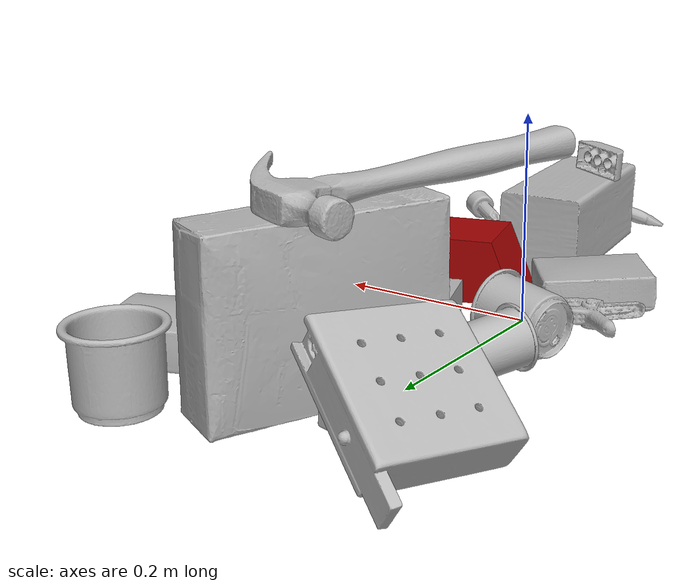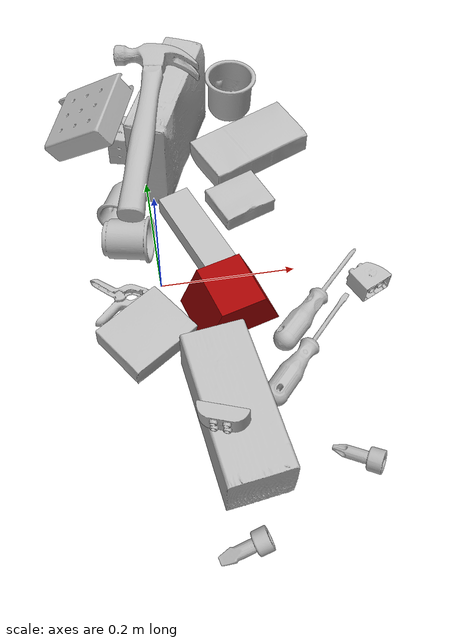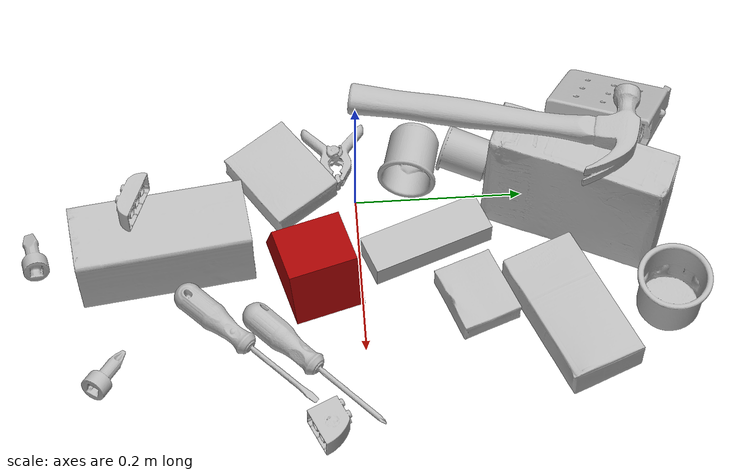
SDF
<sdf version="1.4">
  <world name="default">
    <light name="light1" type="point">
      <pose>0 0 1 0 0 0</pose>
      <diffuse>3 3 3 1</diffuse>
      <specular>3 3 3 1</specular>
    </light>
    <light name="light2" type="point">
      <pose>0 0.5 2 0 0 0</pose>
      <diffuse>1 1 1 1</diffuse>
      <specular>1 1 1 1</specular>
    </light>
    <light name="light3" type="point">
      <pose>0 0.5 2 0 0 0</pose>
      <diffuse>3 3 3 1</diffuse>
      <specular>3 3 3 1</specular>
    </light>
    <scene>
      <ambient>0.7 0.7 0.7</ambient>
    </scene>
    <model name="box21">
      <link name="link_box21">
        <collision name="default">
          <geometry>
            <mesh>
              <uri>model://cracker_box/collision_meshes/collision.obj</uri>
              <scale>1.0 1.0 1.0</scale>
            </mesh>
          </geometry>
          <surface>
            <friction>
              <ode>
                <mu>0.5</mu>
                <mu2>0.5</mu2>
              </ode>
            </friction>
          <contact>
        <ode>
            <max_vel>0</max_vel>
            <min_depth>0.0001</min_depth>
            <kp>1e8</kp>
        </ode>
    </contact></surface>
        </collision>
        <visual name="default">
          <geometry>
            <mesh>
              <uri>model://cracker_box/visual_meshes/visual.dae</uri>
              <scale>1.0 1.0 1.0</scale>
            </mesh>
          </geometry>
        </visual>
        <inertial>
          <mass>1.1849639415740967</mass>
          <pose>0.0009464144241064787 0.0002543424488976598 -0.0017029534792527556 -0.0003162077682631379 -0.011106487737543453 0.002546794536785776</pose>
          <inertia>
            <ixx>0.0030140192</ixx>
            <iyy>0.004976738</iyy>
            <izz>0.007102261</izz>
            <ixy>0</ixy>
            <ixz>0</ixz>
            <iyz>0</iyz>
          </inertia>
        </inertial>
      </link>
      <pose>0.04731908068060875 0.2557030916213989 0.08175786584615707 1.545218187041105 0.009039132224636459 1.1539120210911908</pose>
    </model>
    <model name="box22">
      <link name="link_box22">
        <collision name="default">
          <geometry>
            <mesh>
              <uri>model://rubiks_cube/collision_meshes/collision.obj</uri>
              <scale>1.0 1.0 1.0</scale>
            </mesh>
          </geometry>
          <surface>
            <friction>
              <ode>
                <mu>0.5</mu>
                <mu2>0.5</mu2>
              </ode>
            </friction>
          <contact>
        <ode>
            <max_vel>0</max_vel>
            <min_depth>0.0001</min_depth>
            <kp>1e8</kp>
        </ode>
    </contact></surface>
        </collision>
        <visual name="default">
          <geometry>
            <mesh>
              <uri>model://rubiks_cube/visual_meshes/visual.dae</uri>
              <scale>1.0 1.0 1.0</scale>
            </mesh>
          </geometry>
        </visual>
        <inertial>
          <mass>0.10796652734279633</mass>
          <pose>2.6721041649580002e-05 5.2569666877388954e-05 -7.264316082000732e-06 -0.054672548620525036 -0.09813983330627576 -0.03445544186372042</pose>
          <inertia>
            <ixx>5.965876e-05</ixx>
            <iyy>5.9380527e-05</iyy>
            <izz>6.0153117e-05</izz>
            <ixy>0</ixy>
            <ixz>0</ixz>
            <iyz>0</iyz>
          </inertia>
        </inertial>
      </link>
      <pose>-0.020304063335061073 0.2758930027484894 0.02927503176033497 1.5697517824475724 -0.02175098114106738 1.3394696151914605</pose>
    </model>
    <model name="box23">
      <link name="link_box23">
        <collision name="default">
          <geometry>
            <mesh>
              <uri>model://sugar_box/collision_meshes/collision.obj</uri>
              <scale>1.0 1.0 1.0</scale>
            </mesh>
          </geometry>
          <surface>
            <friction>
              <ode>
                <mu>0.5</mu>
                <mu2>0.5</mu2>
              </ode>
            </friction>
          <contact>
        <ode>
            <max_vel>0</max_vel>
            <min_depth>0.0001</min_depth>
            <kp>1e8</kp>
        </ode>
    </contact></surface>
        </collision>
        <visual name="default">
          <geometry>
            <mesh>
              <uri>model://sugar_box/visual_meshes/visual.dae</uri>
              <scale>1.0 1.0 1.0</scale>
            </mesh>
          </geometry>
        </visual>
        <inertial>
          <mass>0.8519012928009033</mass>
          <pose>0.0010343727190047503 3.8491099985549226e-05 -0.0003636480832938105 -0.00040462606756407727 0.0010506635218583888 0.002615378789044619</pose>
          <inertia>
            <ixx>0.00070980185</ixx>
            <iyy>0.0022942254</iyy>
            <izz>0.0027464617</izz>
            <ixy>0</ixy>
            <ixz>0</ixz>
            <iyz>0</iyz>
          </inertia>
        </inertial>
      </link>
      <pose>0.17709185183048248 0.24005867540836334 0.022362399846315384 3.141270680665736 -0.0251084746312513 0.4005919134386007</pose>
    </model>
    <model name="cup1">
      <link name="link_cup1">
        <collision name="default">
          <geometry>
            <mesh>
              <uri>model://b_cups/collision_meshes/collision.obj</uri>
              <scale>1.0 1.0 1.0</scale>
            </mesh>
          </geometry>
          <surface>
            <friction>
              <ode>
                <mu>0.5</mu>
                <mu2>0.5</mu2>
              </ode>
            </friction>
          <contact>
        <ode>
            <max_vel>0</max_vel>
            <min_depth>0.0001</min_depth>
            <kp>1e8</kp>
        </ode>
    </contact></surface>
        </collision>
        <visual name="default">
          <geometry>
            <mesh>
              <uri>model://b_cups/visual_meshes/visual.dae</uri>
              <scale>1.0 1.0 1.0</scale>
            </mesh>
          </geometry>
        </visual>
        <inertial>
          <mass>0.025879299268126488</mass>
          <pose>0.0005181999877095222 0.0018058597343042493 -0.0013381816679611802 0.11356295314662153 0.03872538879904025 -0.34569789869984097</pose>
          <inertia>
            <ixx>1.6939814e-05</ixx>
            <iyy>1.6618207e-05</iyy>
            <izz>1.4254532e-05</izz>
            <ixy>0</ixy>
            <ixz>0</ixz>
            <iyz>0</iyz>
          </inertia>
        </inertial>
      </link>
      <pose>-0.042721569538116455 0.1401006579399109 0.027815110981464386 -1.4563061323310194 0.6163609606581831 2.797537341911152</pose>
    </model>
    <model name="cup2">
      <link name="link_cup2">
        <collision name="default">
          <geometry>
            <mesh>
              <uri>model://g_cups/collision_meshes/collision.obj</uri>
              <scale>1.0 1.0 1.0</scale>
            </mesh>
          </geometry>
          <surface>
            <friction>
              <ode>
                <mu>0.5</mu>
                <mu2>0.5</mu2>
              </ode>
            </friction>
          <contact>
        <ode>
            <max_vel>0</max_vel>
            <min_depth>0.0001</min_depth>
            <kp>1e8</kp>
        </ode>
    </contact></surface>
        </collision>
        <visual name="default">
          <geometry>
            <mesh>
              <uri>model://g_cups/visual_meshes/visual.dae</uri>
              <scale>1.0 1.0 1.0</scale>
            </mesh>
          </geometry>
        </visual>
        <inertial>
          <mass>0.06683293730020523</mass>
          <pose>-0.0007946278783492744 -4.206685844110325e-05 -0.002132937777787447 -0.21382591566164685 -0.31410327542238353 0.3112138520870617</pose>
          <inertia>
            <ixx>7.8009005e-05</ixx>
            <iyy>7.7743636e-05</iyy>
            <izz>8.080389e-05</izz>
            <ixy>0</ixy>
            <ixz>0</ixz>
            <iyz>0</iyz>
          </inertia>
        </inertial>
      </link>
      <pose>0.16512680053710938 0.3562811613082886 0.03720300272107124 -3.419320168281646e-08 -1.1802482742265738e-07 1.053940698490994</pose>
    </model>
    <model name="box11">
      <link name="link_box11">
        <collision name="default">
          <geometry>
            <mesh>
              <uri>model://wood_block/collision_meshes/collision.obj</uri>
              <scale>1.0 1.0 1.0</scale>
            </mesh>
          </geometry>
          <surface>
            <friction>
              <ode>
                <mu>0.5</mu>
                <mu2>0.5</mu2>
              </ode>
            </friction>
          <contact>
        <ode>
            <max_vel>0</max_vel>
            <min_depth>0.0001</min_depth>
            <kp>1e8</kp>
        </ode>
    </contact></surface>
        </collision>
        <visual name="default">
          <geometry>
            <mesh>
              <uri>model://wood_block/visual_meshes/visual.dae</uri>
              <scale>1.0 1.0 1.0</scale>
            </mesh>
          </geometry>
        </visual>
        <inertial>
          <mass>0.9227498173713684</mass>
          <pose>-5.813315056002466e-06 -0.0005708094104193151 0.0002640858292579651 -0.05221074847543751 -0.005192695234575722 -0.00686137748598008</pose>
          <inertia>
            <ixx>0.001234779</ixx>
            <iyy>0.0039006667</iyy>
            <izz>0.0038860766</izz>
            <ixy>0</ixy>
            <ixz>0</ixz>
            <iyz>0</iyz>
          </inertia>
        </inertial>
      </link>
      <pose>0.06812752783298492 -0.231220081448555 0.04427739232778549 -1.5548838806524425 0.004819369021502335 -1.4468981093115845</pose>
    </model>
    <model name="box12">
      <link name="link_box12">
        <collision name="default">
          <geometry>
            <mesh>
              <uri>model://pudding_box/collision_meshes/collision.obj</uri>
              <scale>1.0 1.0 1.0</scale>
            </mesh>
          </geometry>
          <surface>
            <friction>
              <ode>
                <mu>0.5</mu>
                <mu2>0.5</mu2>
              </ode>
            </friction>
          <contact>
        <ode>
            <max_vel>0</max_vel>
            <min_depth>0.0001</min_depth>
            <kp>1e8</kp>
        </ode>
    </contact></surface>
        </collision>
        <visual name="default">
          <geometry>
            <mesh>
              <uri>model://pudding_box/visual_meshes/visual.dae</uri>
              <scale>1.0 1.0 1.0</scale>
            </mesh>
          </geometry>
        </visual>
        <inertial>
          <mass>0.23326139152050018</mass>
          <pose>0.0004894821904599667 0.0008067885646596551 -0.0005188827635720372 0.0052131032034861725 -0.006603797335681708 0.02007982515858456</pose>
          <inertia>
            <ixx>0.00026369</ixx>
            <iyy>0.00017741251</iyy>
            <izz>0.00038940719</izz>
            <ixy>0</ixy>
            <ixz>0</ixz>
            <iyz>0</iyz>
          </inertia>
        </inertial>
      </link>
      <pose>-0.029135728254914284 -0.08838170021772385 0.019725805148482323 0.022348586911591226 -0.011391407086242668 2.1854577393887165</pose>
    </model>
    <model name="box13">
      <link name="link_box13">
        <collision name="default">
          <geometry>
            <mesh>
              <uri>model://gelatin_box/collision_meshes/collision.obj</uri>
              <scale>1.0 1.0 1.0</scale>
            </mesh>
          </geometry>
          <surface>
            <friction>
              <ode>
                <mu>0.5</mu>
                <mu2>0.5</mu2>
              </ode>
            </friction>
          <contact>
        <ode>
            <max_vel>0</max_vel>
            <min_depth>0.0001</min_depth>
            <kp>1e8</kp>
        </ode>
    </contact></surface>
        </collision>
        <visual name="default">
          <geometry>
            <mesh>
              <uri>model://gelatin_box/visual_meshes/visual.dae</uri>
              <scale>1.0 1.0 1.0</scale>
            </mesh>
          </geometry>
        </visual>
        <inertial>
          <mass>0.0997389405965805</mass>
          <pose>0.0004319618456065655 0.00011156871187267825 -0.0003640321083366871 -0.001050372080915675 -0.004755817759010177 0.0164405576084854</pose>
          <inertia>
            <ixx>7.040755e-05</ixx>
            <iyy>5.0291743e-05</iyy>
            <izz>0.000107175976</izz>
            <ixy>0</ixy>
            <ixz>0</ixz>
            <iyz>0</iyz>
          </inertia>
        </inertial>
      </link>
      <pose>0.1421874612569809 0.13356797397136688 0.015168314799666405 0.0055974732549171355 -0.007304588509983501 -1.2162972989829395</pose>
    </model>
    <model name="box14">
      <link name="link_box14">
        <collision name="default">
          <geometry>
            <mesh>
              <uri>model://jenga/collision_meshes/collision.obj</uri>
              <scale>1.0 1.0 1.0</scale>
            </mesh>
          </geometry>
          <surface>
            <friction>
              <ode>
                <mu>0.5</mu>
                <mu2>0.5</mu2>
              </ode>
            </friction>
          <contact>
        <ode>
            <max_vel>0</max_vel>
            <min_depth>0.0001</min_depth>
            <kp>1e8</kp>
        </ode>
    </contact></surface>
        </collision>
        <visual name="default">
          <geometry>
            <mesh>
              <uri>model://jenga/visual_meshes/visual.dae</uri>
              <scale>1.0 1.0 1.0</scale>
            </mesh>
          </geometry>
        </visual>
        <inertial>
          <mass>0.23366476595401764</mass>
          <pose>-2.502855807051674e-07 -0.0001025000965455547 -4.092339804628864e-05 0.0 -7.34215461761844e-07 0.0</pose>
          <inertia>
            <ixx>6.466071e-05</ixx>
            <iyy>0.0004381392</iyy>
            <izz>0.00046775083</izz>
            <ixy>0</ixy>
            <ixz>0</ixz>
            <iyz>0</iyz>
          </inertia>
        </inertial>
      </link>
      <pose>0.06451141089200974 0.07982529699802399 0.014999995008111 6.3286622193741695e-09 8.129890027479458e-10 1.9297767996429318</pose>
    </model>
    <model name="cup15">
      <link name="link_cup15">
        <collision name="default">
          <geometry>
            <mesh>
              <uri>model://d_cups/collision_meshes/collision.obj</uri>
              <scale>1.0 1.0 1.0</scale>
            </mesh>
          </geometry>
          <surface>
            <friction>
              <ode>
                <mu>0.5</mu>
                <mu2>0.5</mu2>
              </ode>
            </friction>
          <contact>
        <ode>
            <max_vel>0</max_vel>
            <min_depth>0.0001</min_depth>
            <kp>1e8</kp>
        </ode>
    </contact></surface>
        </collision>
        <visual name="default">
          <geometry>
            <mesh>
              <uri>model://d_cups/visual_meshes/visual.dae</uri>
              <scale>1.0 1.0 1.0</scale>
            </mesh>
          </geometry>
        </visual>
        <inertial>
          <mass>0.05354860797524452</mass>
          <pose>0.000806806143373251 0.001911740517243743 -0.002266649389639497 0.240133395025133 -0.24708811164710584 0.5942101592185234</pose>
          <inertia>
            <ixx>4.4832785e-05</ixx>
            <iyy>4.470303e-05</iyy>
            <izz>4.0581297e-05</izz>
            <ixy>0</ixy>
            <ixz>0</ixz>
            <iyz>0</iyz>
          </inertia>
        </inertial>
      </link>
      <pose>-0.03954416140913963 0.0693792998790741 0.03244730085134506 -1.481060739408881 0.35128686465063075 -1.7852555121746507</pose>
    </model>
    <model name="toy1">
      <link name="link_toy1">
        <collision name="default">
          <geometry>
            <mesh>
              <uri>model://d_toy_airplane/collision_meshes/collision.obj</uri>
              <scale>1.0 1.0 1.0</scale>
            </mesh>
          </geometry>
          <surface>
            <friction>
              <ode>
                <mu>0.5</mu>
                <mu2>0.5</mu2>
              </ode>
            </friction>
          <contact>
        <ode>
            <max_vel>0</max_vel>
            <min_depth>0.0001</min_depth>
            <kp>1e8</kp>
        </ode>
    </contact></surface>
        </collision>
        <visual name="default">
          <geometry>
            <mesh>
              <uri>model://d_toy_airplane/visual_meshes/visual.dae</uri>
              <scale>1.0 1.0 1.0</scale>
            </mesh>
          </geometry>
        </visual>
        <inertial>
          <mass>0.01055214088410139</mass>
          <pose>9.410294296685606e-05 -5.809328649775125e-05 -0.011728094890713692 0.00026701540047293157 0.004678982739479609 0.5194739606880012</pose>
          <inertia>
            <ixx>3.1633276e-06</ixx>
            <iyy>3.1657132e-06</iyy>
            <izz>9.55029e-07</izz>
            <ixy>0</ixy>
            <ixz>0</ixz>
            <iyz>0</iyz>
          </inertia>
        </inertial>
      </link>
      <pose>0.2138156145811081 -0.29755303263664246 0.011044159531593323 -2.419428998326129 -1.2639162247328801 1.8291174446177338</pose>
    </model>
    <model name="toy2">
      <link name="link_toy2">
        <collision name="default">
          <geometry>
            <mesh>
              <uri>model://d_lego_duplo/collision_meshes/collision.obj</uri>
              <scale>1.0 1.0 1.0</scale>
            </mesh>
          </geometry>
          <surface>
            <friction>
              <ode>
                <mu>0.5</mu>
                <mu2>0.5</mu2>
              </ode>
            </friction>
          <contact>
        <ode>
            <max_vel>0</max_vel>
            <min_depth>0.0001</min_depth>
            <kp>1e8</kp>
        </ode>
    </contact></surface>
        </collision>
        <visual name="default">
          <geometry>
            <mesh>
              <uri>model://d_lego_duplo/visual_meshes/visual.dae</uri>
              <scale>1.0 1.0 1.0</scale>
            </mesh>
          </geometry>
        </visual>
        <inertial>
          <mass>0.039816875010728836</mass>
          <pose>0.0028305640444159508 0.00016366131603717804 0.000858980929479003 0.08010950238605453 -0.3835521959243733 0.0010296761363168562</pose>
          <inertia>
            <ixx>7.70796e-06</ixx>
            <iyy>1.0939688e-05</iyy>
            <izz>1.0549791e-05</izz>
            <ixy>0</ixy>
            <ixz>0</ixz>
            <iyz>0</iyz>
          </inertia>
        </inertial>
      </link>
      <pose>0.29986676573753357 -0.04384976625442505 0.016249647364020348 1.5793377648306774 -0.013120122069357976 -2.70195659265989</pose>
    </model>
    <model name="toy3">
      <link name="link_toy3">
        <collision name="default">
          <geometry>
            <mesh>
              <uri>model://nine_hole_peg_test/collision_meshes/collision.obj</uri>
              <scale>1.0 1.0 1.0</scale>
            </mesh>
          </geometry>
          <surface>
            <friction>
              <ode>
                <mu>0.5</mu>
                <mu2>0.5</mu2>
              </ode>
            </friction>
          <contact>
        <ode>
            <max_vel>0</max_vel>
            <min_depth>0.0001</min_depth>
            <kp>1e8</kp>
        </ode>
    </contact></surface>
        </collision>
        <visual name="default">
          <geometry>
            <mesh>
              <uri>model://nine_hole_peg_test/visual_meshes/visual.dae</uri>
              <scale>1.0 1.0 1.0</scale>
            </mesh>
          </geometry>
        </visual>
        <inertial>
          <mass>0.7048692107200623</mass>
          <pose>-0.0046173869632184505 -0.009647614322602749 2.6460689696250483e-05 -0.0014666794682547425 0.0007194190753660851 -0.6342416580414534</pose>
          <inertia>
            <ixx>0.0011021789</ixx>
            <iyy>0.0010290928</iyy>
            <izz>0.0019313421</izz>
            <ixy>0</ixy>
            <ixz>0</ixz>
            <iyz>0</iyz>
          </inertia>
        </inertial>
      </link>
      <pose>-0.08471141755580902 0.3184928297996521 0.051900964230298996 -0.6056095101089493 -0.09534159154883452 1.1828741377389471</pose>
    </model>
    <model name="toy4">
      <link name="link_toy4">
        <collision name="default">
          <geometry>
            <mesh>
              <uri>model://a_lego_duplo/collision_meshes/collision.obj</uri>
              <scale>1.0 1.0 1.0</scale>
            </mesh>
          </geometry>
          <surface>
            <friction>
              <ode>
                <mu>0.5</mu>
                <mu2>0.5</mu2>
              </ode>
            </friction>
          <contact>
        <ode>
            <max_vel>0</max_vel>
            <min_depth>0.0001</min_depth>
            <kp>1e8</kp>
        </ode>
    </contact></surface>
        </collision>
        <visual name="default">
          <geometry>
            <mesh>
              <uri>model://a_lego_duplo/visual_meshes/visual.dae</uri>
              <scale>1.0 1.0 1.0</scale>
            </mesh>
          </geometry>
        </visual>
        <inertial>
          <mass>0.021006127819418907</mass>
          <pose>-0.00011337678006384522 0.00018517556600272655 0.0003692602913361043 -0.014116980161978756 -0.00012565077681184441 6.142327078429463e-05</pose>
          <inertia>
            <ixx>2.6931523e-06</ixx>
            <iyy>6.033251e-06</iyy>
            <izz>7.473524e-06</izz>
            <ixy>0</ixy>
            <ixz>0</ixz>
            <iyz>0</iyz>
          </inertia>
        </inertial>
      </link>
      <pose>0.043529290705919266 -0.2630561292171478 0.10526416450738907 -1.5990792915153884 0.07407429000129338 2.7769124085486356</pose>
    </model>
    <model name="toy5">
      <link name="link_toy5">
        <collision name="default">
          <geometry>
            <mesh>
              <uri>model://e_toy_airplane/collision_meshes/collision.obj</uri>
              <scale>1.0 1.0 1.0</scale>
            </mesh>
          </geometry>
          <surface>
            <friction>
              <ode>
                <mu>0.5</mu>
                <mu2>0.5</mu2>
              </ode>
            </friction>
          <contact>
        <ode>
            <max_vel>0</max_vel>
            <min_depth>0.0001</min_depth>
            <kp>1e8</kp>
        </ode>
    </contact></surface>
        </collision>
        <visual name="default">
          <geometry>
            <mesh>
              <uri>model://e_toy_airplane/visual_meshes/visual.dae</uri>
              <scale>1.0 1.0 1.0</scale>
            </mesh>
          </geometry>
        </visual>
        <inertial>
          <mass>0.02451101876795292</mass>
          <pose>0.00011740468471543863 -2.248291639261879e-05 -0.011187203228473663 0.00551850103187323 0.009228285956806933 0.150416364683818</pose>
          <inertia>
            <ixx>7.481042e-06</ixx>
            <iyy>7.4045165e-06</iyy>
            <izz>2.2483475e-06</izz>
            <ixy>0</ixy>
            <ixz>0</ixz>
            <iyz>0</iyz>
          </inertia>
        </inertial>
      </link>
      <pose>0.051644809544086456 -0.38766908645629883 0.010332483798265457 2.4256586938738107 -1.1977866662211625 -2.177130901107246</pose>
    </model>
    <model name="toy6">
      <link name="link_toy6">
        <collision name="default">
          <geometry>
            <mesh>
              <uri>model://prism/collision_meshes/collision.obj</uri>
              <scale>1.0 1.0 1.0</scale>
            </mesh>
          </geometry>
          <surface>
            <friction>
              <ode>
                <mu>0.5</mu>
                <mu2>0.5</mu2>
              </ode>
            </friction>
          <contact>
        <ode>
            <max_vel>0</max_vel>
            <min_depth>0.0001</min_depth>
            <kp>1e8</kp>
        </ode>
    </contact></surface>
        </collision>
        <visual name="default">
          <geometry>
            <mesh>
              <uri>model://prism/visual_meshes/visual.dae</uri>
              <scale>1.0 1.0 1.0</scale>
            </mesh>
          </geometry>
        </visual>
        <inertial>
          <mass>0.639074981212616</mass>
          <pose>-9.85359656624496e-05 -4.96157269935793e-07 -0.003386910306289792 0.0 0.006559180766136186 0.0</pose>
          <inertia>
            <ixx>0.0005767573</ixx>
            <iyy>0.0006970186</iyy>
            <izz>0.0008537644</izz>
            <ixy>0</ixy>
            <ixz>0</ixz>
            <iyz>0</iyz>
          </inertia>
        </inertial>
      </link>
      <pose>0.09309303760528564 -0.0539056770503521 0.032169997692108154 3.9119133397880215e-08 -6.89539305736283e-09 0.27859636387462844</pose>
    </model>
    <model name="hardware1">
      <link name="link_hardware1">
        <collision name="default">
          <geometry>
            <mesh>
              <uri>model://medium_clamp/collision_meshes/collision.obj</uri>
              <scale>1.0 1.0 1.0</scale>
            </mesh>
          </geometry>
          <surface>
            <friction>
              <ode>
                <mu>0.5</mu>
                <mu2>0.5</mu2>
              </ode>
            </friction>
          <contact>
        <ode>
            <max_vel>0</max_vel>
            <min_depth>0.0001</min_depth>
            <kp>1e8</kp>
        </ode>
    </contact></surface>
        </collision>
        <visual name="default">
          <geometry>
            <mesh>
              <uri>model://medium_clamp/visual_meshes/visual.dae</uri>
              <scale>1.0 1.0 1.0</scale>
            </mesh>
          </geometry>
        </visual>
        <inertial>
          <mass>0.01437164656817913</mass>
          <pose>0.005390993785113096 0.00039532355731353164 -0.0001222158025484532 -0.001226922255807767 0.0025845058861846287 0.038207728721457376</pose>
          <inertia>
            <ixx>3.9153533e-06</ixx>
            <iyy>5.697947e-06</iyy>
            <izz>8.776544e-06</izz>
            <ixy>0</ixy>
            <ixz>0</ixz>
            <iyz>0</iyz>
          </inertia>
        </inertial>
      </link>
      <pose>-0.062323153018951416 -0.022441305220127106 0.013321888633072376 0.009537177715849948 0.014619804268850612 0.029154256757306884</pose>
    </model>
    <model name="hardware2">
      <link name="link_hardware2">
        <collision name="default">
          <geometry>
            <mesh>
              <uri>model://hammer/collision_meshes/collision.obj</uri>
              <scale>1.0 1.0 1.0</scale>
            </mesh>
          </geometry>
          <surface>
            <friction>
              <ode>
                <mu>0.5</mu>
                <mu2>0.5</mu2>
              </ode>
            </friction>
          <contact>
        <ode>
            <max_vel>0</max_vel>
            <min_depth>0.0001</min_depth>
            <kp>1e8</kp>
        </ode>
    </contact></surface>
        </collision>
        <visual name="default">
          <geometry>
            <mesh>
              <uri>model://hammer/visual_meshes/visual.dae</uri>
              <scale>1.0 1.0 1.0</scale>
            </mesh>
          </geometry>
        </visual>
        <inertial>
          <mass>0.29233166575431824</mass>
          <pose>0.009415771812200546 -0.011892357841134071 -0.0001235063245985657 0.02315535385536088 -0.004792164028838156 -0.01276032390705471</pose>
          <inertia>
            <ixx>0.0001252207</ixx>
            <iyy>0.003393116</iyy>
            <izz>0.0034903311</izz>
            <ixy>0</ixy>
            <ixz>0</ixz>
            <iyz>0</iyz>
          </inertia>
        </inertial>
      </link>
      <pose>0.016800127923488617 0.1659635603427887 0.17764945328235626 3.065806332774209 -0.003760453930053385 1.3554854607861488</pose>
    </model>
    <model name="hardware3">
      <link name="link_hardware3">
        <collision name="default">
          <geometry>
            <mesh>
              <uri>model://phillips_screwdriver/collision_meshes/collision.obj</uri>
              <scale>1.0 1.0 1.0</scale>
            </mesh>
          </geometry>
          <surface>
            <friction>
              <ode>
                <mu>0.5</mu>
                <mu2>0.5</mu2>
              </ode>
            </friction>
          <contact>
        <ode>
            <max_vel>0</max_vel>
            <min_depth>0.0001</min_depth>
            <kp>1e8</kp>
        </ode>
    </contact></surface>
        </collision>
        <visual name="default">
          <geometry>
            <mesh>
              <uri>model://phillips_screwdriver/visual_meshes/visual.dae</uri>
              <scale>1.0 1.0 1.0</scale>
            </mesh>
          </geometry>
        </visual>
        <inertial>
          <mass>0.11685379594564438</mass>
          <pose>-0.04777182638645172 0.0010362302418798208 -0.0004555549821816385 -0.15721778382646787 0.005850995328295584 -0.002156740385256481</pose>
          <inertia>
            <ixx>1.3729124e-05</ixx>
            <iyy>0.00017213916</iyy>
            <izz>0.00017228544</izz>
            <ixy>0</ixy>
            <ixz>0</ixz>
            <iyz>0</iyz>
          </inertia>
        </inertial>
      </link>
      <pose>0.22028939425945282 -0.06154884397983551 0.015027373097836971 -2.3796139743195175 0.05373785872599243 0.7864132327867193</pose>
    </model>
    <model name="hardware4">
      <link name="link_hardware4">
        <collision name="default">
          <geometry>
            <mesh>
              <uri>model://flat_screwdriver/collision_meshes/collision.obj</uri>
              <scale>1.0 1.0 1.0</scale>
            </mesh>
          </geometry>
          <surface>
            <friction>
              <ode>
                <mu>0.5</mu>
                <mu2>0.5</mu2>
              </ode>
            </friction>
          <contact>
        <ode>
            <max_vel>0</max_vel>
            <min_depth>0.0001</min_depth>
            <kp>1e8</kp>
        </ode>
    </contact></surface>
        </collision>
        <visual name="default">
          <geometry>
            <mesh>
              <uri>model://flat_screwdriver/visual_meshes/visual.dae</uri>
              <scale>1.0 1.0 1.0</scale>
            </mesh>
          </geometry>
        </visual>
        <inertial>
          <mass>0.10915977507829666</mass>
          <pose>-0.0489187091588974 -0.0006576799787580967 -0.000614091579336673 -0.5614402636475724 -0.003233725963840683 0.006982283174401888</pose>
          <inertia>
            <ixx>1.2897148e-05</ixx>
            <iyy>0.0001637322</iyy>
            <izz>0.00016365637</izz>
            <ixy>0</ixy>
            <ixz>0</ixz>
            <iyz>0</iyz>
          </inertia>
        </inertial>
      </link>
      <pose>0.18957054615020752 -0.13861417770385742 0.014993507415056229 -0.05141903311349409 0.05988972054220448 0.7968961717490243</pose>
    </model>
  <physics type="ode">
      <max_contacts>50</max_contacts>
      <ode>
        <solver>
          <type>quick</type>
          <iters>75</iters>
        </solver>
        <constraints>
          <contact_max_correcting_vel>0</contact_max_correcting_vel>
          <contact_surface_layer>0</contact_surface_layer>
        </constraints>
      </ode>
    </physics></world>
</sdf>
